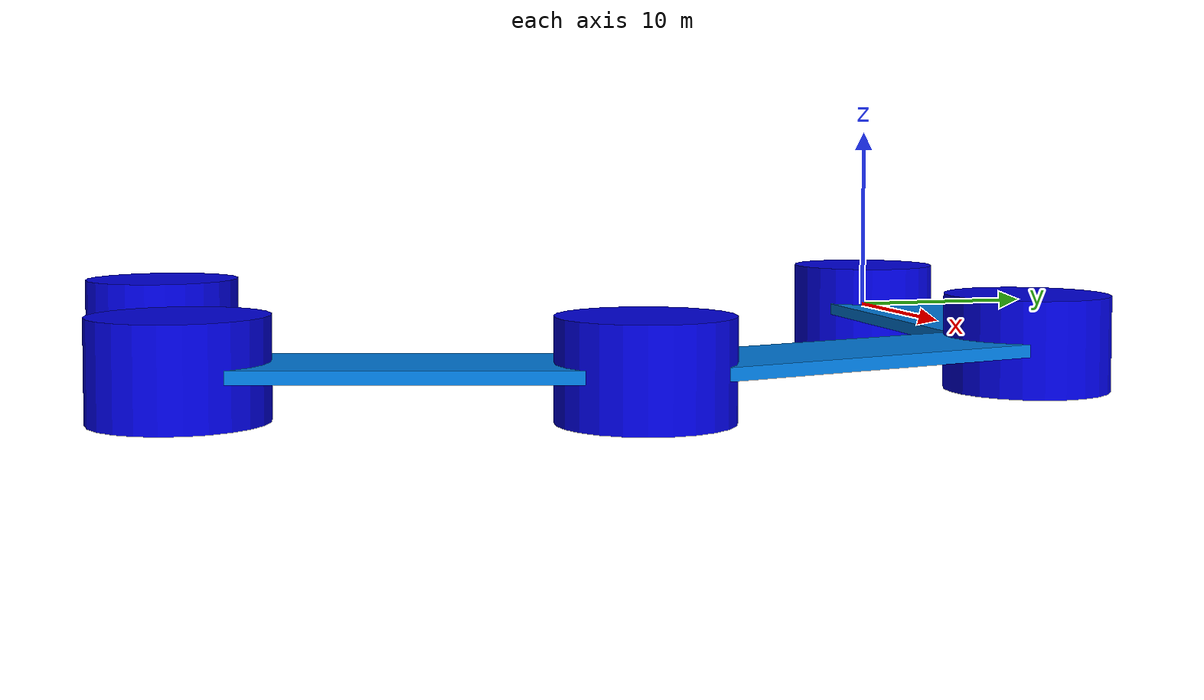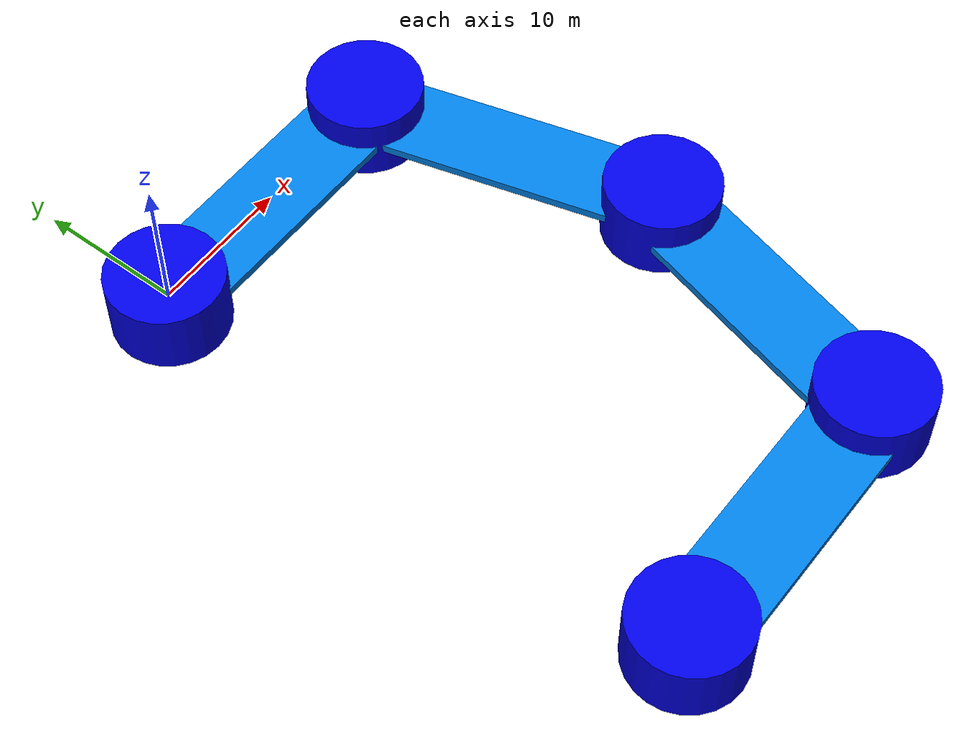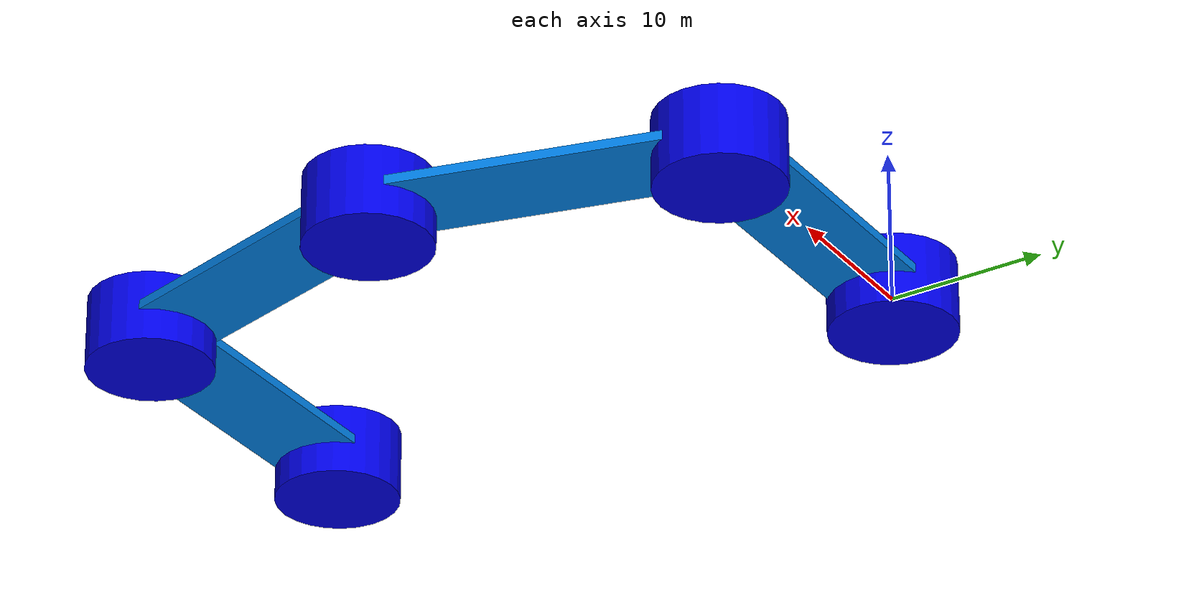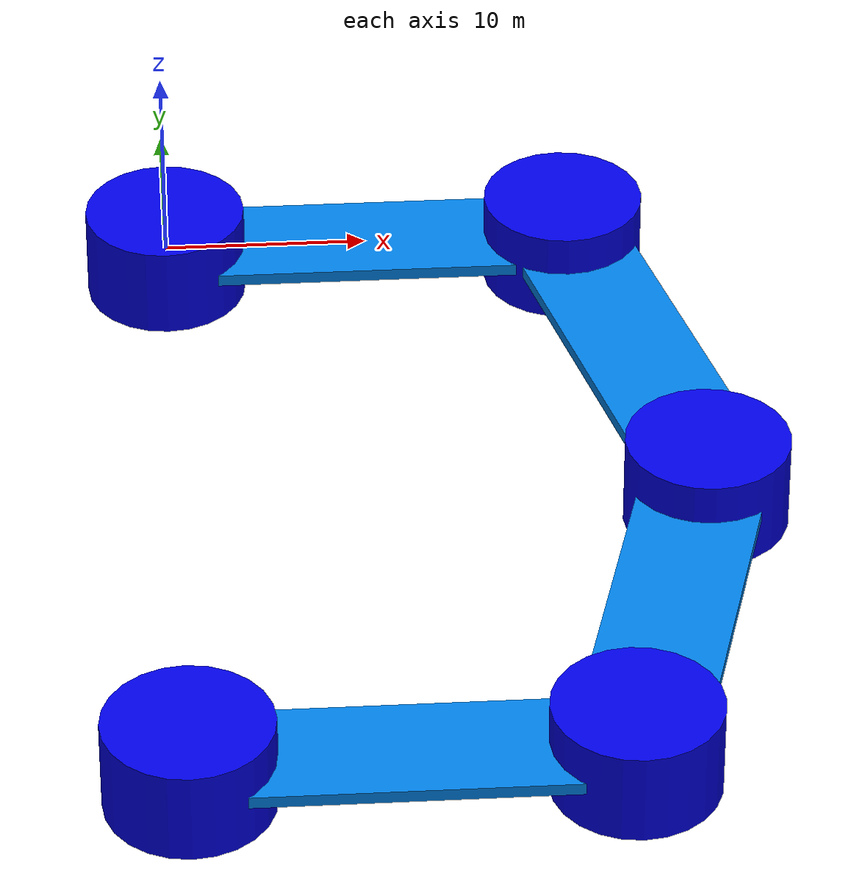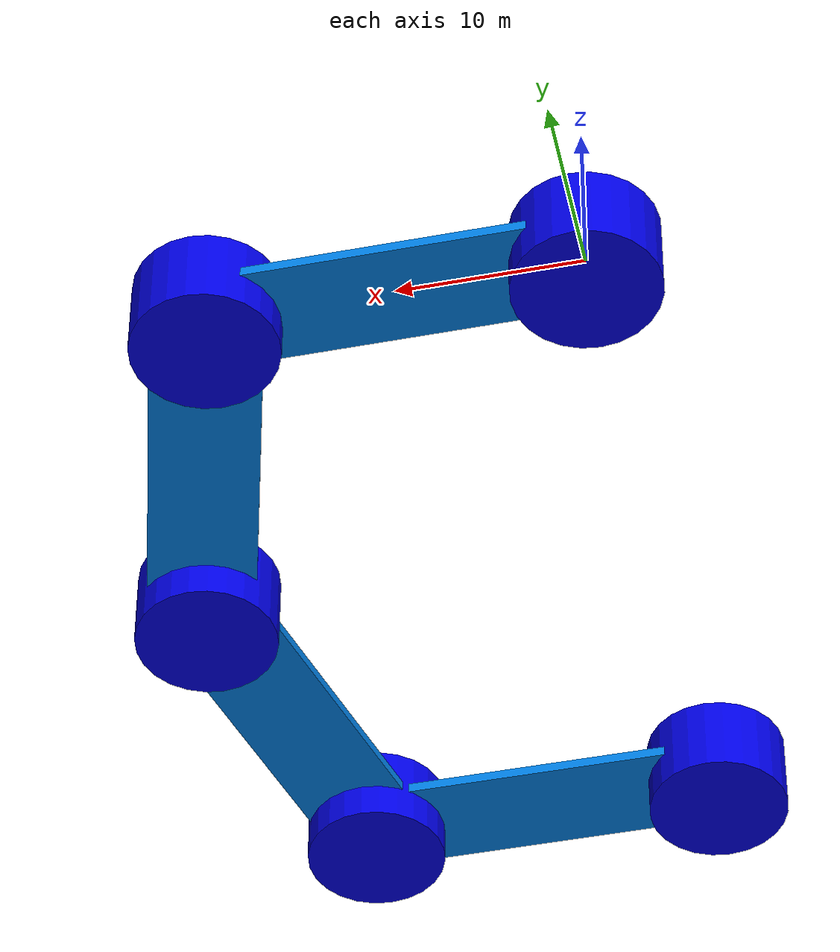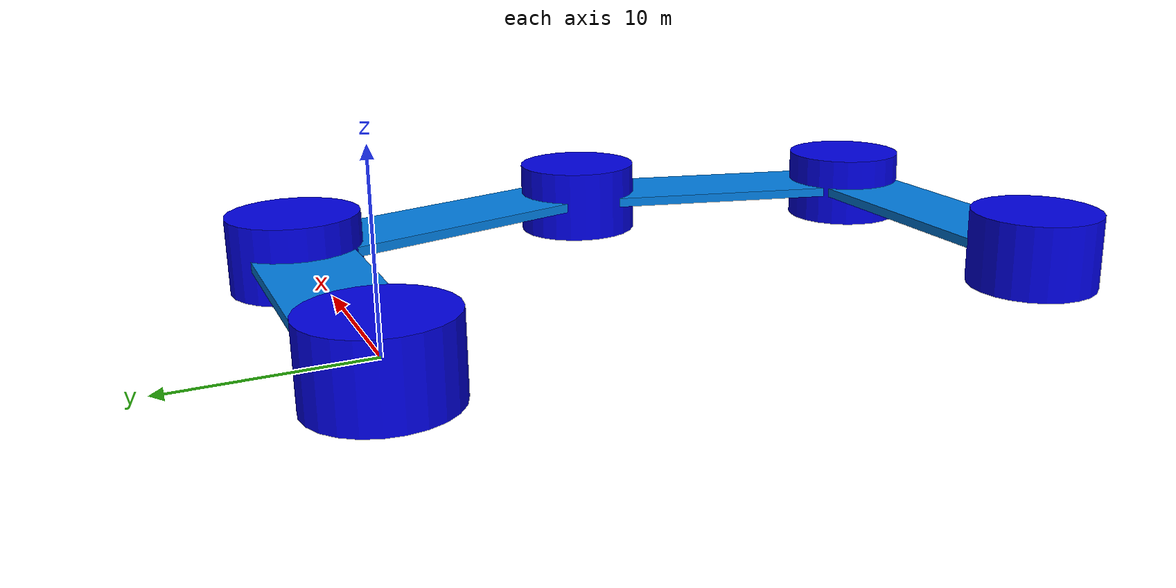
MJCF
<mujoco>
    <option timestep="0.0002" />
    <asset>
        <material name="blue_" rgba="0 0 1 1" />
        <material name="green" rgba="0 1 0 1" />
        <material name="red__" rgba="1 0 0 1" />
        <material name="white" rgba="1 1 1 1" />
    </asset>
    <worldbody>
        <body name="left_1" pos="0 0 0">
            <joint name="left_1_j" pos="0 0 0" axis="0 0 1 " />
            <geom type="cylinder" size="3.96 2.3" rgba="0 0 .9 1" mass="65"/>
            <geom type="box" pos="10 0 0" size="10 3 .3" rgba="0 .5 .9 1" mass="20"/>
            <body name="left_2" pos="20 0 0" euler="0 0 -75">
                <joint name="left_2_j" pos="0 0 0" axis="0 0 1 " />
                <geom type="cylinder" size="3.96 2.3" rgba="0 0 .9 1" mass="65"/>
                <geom type="box" pos="10 0 0" size="10 3 .3" rgba="0 .5 .9 1" mass="20"/>
                <body name="left_3" pos="20 0 0">
                </body>
            </body>

        </body>

        <body name="right_1" pos="0 -40 0">
            <joint name="right_j_1" pos="0 0 0" axis="0 0 1 " />
            <geom type="cylinder" size="3.96 2.3" rgba="0 0 .9 1" mass="65"/>
            <geom type="box" pos="10 0 0" size="10 3 .3" rgba="0 .5 .9 1" mass="20"/>
            <body name="right_2" pos="20 0 0" euler="0 0 75">
                <joint name="right_j_2" pos="0 0 0" axis="0 0 1 " />
                <geom type="cylinder" size="3.96 2.3" rgba="0 0 .9 1" mass="65"/>
                <geom type="box" pos="10 0 0" size="10 3 .3" rgba="0 .5 .9 1" mass="20"/>
                <body name="right_3" pos="20 0 0">
                    <joint name="right_j_3" pos="0 0 0" axis="0 0 1 " />
                    <geom type="cylinder" size="3.96 2.3" rgba="0 0 .9 1" mass="65"/>
                </body>
            </body>

        </body>
    </worldbody>
    <equality>
        <connect name="kinematic_link2" active="true" body1="right_3" body2="left_3" anchor="0 0 0" />
    </equality>

     <actuator>
        <motor name="1_motor" joint="right_j_1" gear="1000" ctrlrange="-300 300" ctrllimited="true"/>
        <motor name="2_motor" joint="left_1_j" gear="1000" ctrlrange="-300 300" ctrllimited="true"/>
    </actuator>
    <contact>
        <exclude body1="left_3" body2="left_1"/>
        <exclude body1="left_3" body2="left_2"/>
        <exclude body1="left_3" body2="right_1"/>
        <exclude body1="left_3" body2="right_2"/>
        <exclude body1="left_3" body2="right_3"/>

        <exclude body1="left_2" body2="left_1"/>
        <exclude body1="left_2" body2="right_1"/>
        <exclude body1="left_2" body2="right_2"/>
        <exclude body1="left_2" body2="right_3"/>

        <exclude body1="left_1" body2="right_1"/>
        <exclude body1="left_1" body2="right_2"/>
        <exclude body1="left_1" body2="right_3"/>

        <exclude body1="right_1" body2="right_3"/>

    </contact>
</mujoco>
